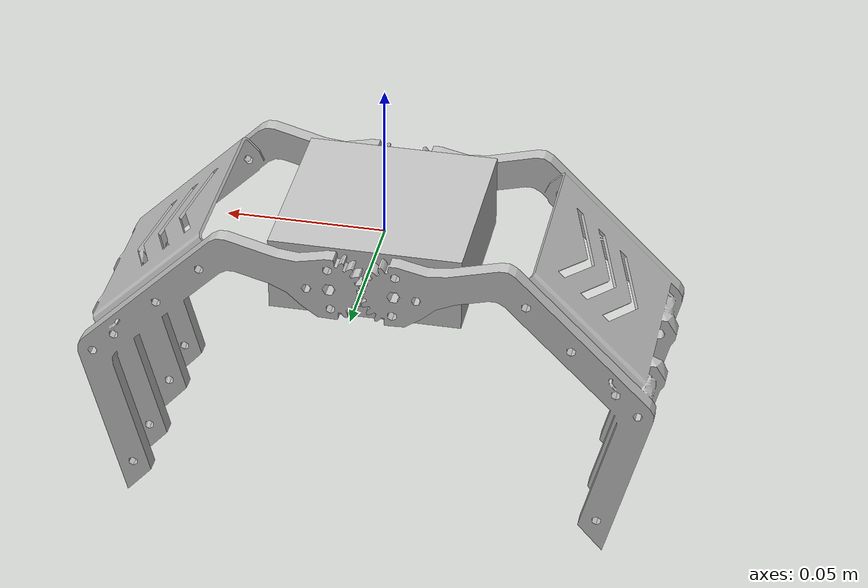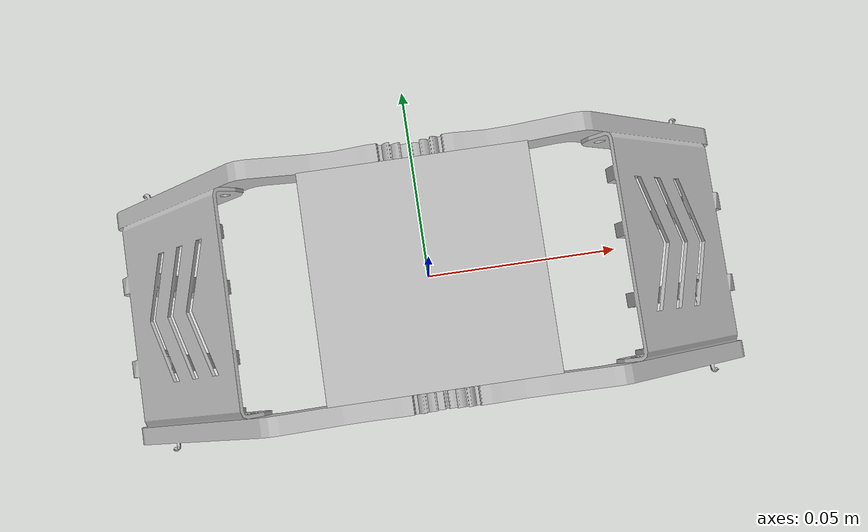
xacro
<?xml version="1.0"?>
<robot name="protobot_gripper" xmlns:xacro="http://ros.org/wiki/xacro">
  <xacro:include filename="$(find protobot_gripper_description)/urdf/protobot_gripper.xacro"/>
  <xacro:create_gripper/>
  <xacro:include filename="$(find protobot_gripper_description)/urdf/protobot_gripper.transmission.xacro"/>
  <xacro:include filename="$(find protobot_gripper_description)/urdf/protobot_gripper.gazebo.xacro"/>
</robot>

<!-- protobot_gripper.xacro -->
<robot xmlns:xacro="http://ros.org/wiki/xacro">
  <xacro:macro name="create_gripper" params="connected_to:='' xyz:='0 0 0' rpy:='0 0 0'">
    <xacro:unless value="${connected_to==''}">
      <joint name="gripper_base_joint" type="fixed">
        <parent link="${connected_to}"/>
        <child link="gripper_base_link"/>
        <origin rpy="${rpy}" xyz="${xyz}"/>
      </joint>
    </xacro:unless>

    <xacro:macro name="inertial_cuboid_with_pose" params="mass x_length y_length z_length *origin">
      <inertial>
        <xacro:insert_block name="origin"/>
        <mass value="${mass}" />
        <inertia ixx="${(1/12) * mass * (y_length*y_length + z_length*z_length)}" ixy="0.0" ixz="0.0"
                 iyy="${(1/12) * mass * (x_length*x_length + z_length*z_length)}" iyz="0.0"
                 izz="${(1/12) * mass * (x_length*x_length + y_length*y_length)}" />
      </inertial>
    </xacro:macro>

    <link
      name="gripper_base_link">
      <inertial_cuboid_with_pose
        mass="0.2"
        x_length="0.06"
        y_length="0.06"
        z_length="0.024">
        <origin xyz="0 0 0"  rpy="0 0 0"/>
      </inertial_cuboid_with_pose>
      <visual>
        <origin
          xyz="0 0 0"
          rpy="0 0 0" />
        <geometry>
          <box size="0.06 0.06 0.024"/>
        </geometry>
        <material
          name="">
          <color
            rgba="0.75294 0.75294 0.75294 1" />
        </material>
      </visual>
      <collision>
        <origin
          xyz="0 0 0"
          rpy="0 0 0" />
        <geometry>
          <box size="0.06 0.06 0.024"/>
        </geometry>
      </collision>
    </link>

    <link
      name="finger1_link">
      <inertial>
        <origin
          xyz="0 0 0"
          rpy="0 0 0" />
        <mass
          value="6.9625730e-02" />
        <inertia
          ixx="1.5879474e-04"
          ixy="1.3763814e-08"
          ixz="-1.2889963e-04"
          iyy="3.3239323e-04"
          iyz="5.8014283e-09"
          izz="2.8244275e-04" />
      </inertial>
      <visual>
        <origin
          xyz="0 0 0"
          rpy="0 0 0" />
        <geometry>
          <mesh
            filename="package://protobot_gripper_description/meshes/finger_link.STL"/>
        </geometry>
        <material
          name="">
          <color
            rgba="0.75294 0.75294 0.75294 1" />
        </material>
      </visual>
      <collision>
        <origin
          xyz="0 0 0"
          rpy="0 0 0" />
        <geometry>
          <mesh
            filename="package://protobot_gripper_description/meshes/finger_link.STL"/>
        </geometry>
      </collision>
    </link>

    <joint
      name="finger1_joint"
      type="revolute">
      <origin
        xyz="0.01 0 0"
        rpy="3.1416 0 0" />
      <parent
        link="gripper_base_link" />
      <child
        link="finger1_link" />
      <axis
        xyz="0 1 0" />
      <limit
        lower="-0.7"
        upper="0.3"
        effort="5"
        velocity="1"/>
      <dynamics damping="1.0e-6" friction="8.0e-1"/>
    </joint>

    <link
      name="finger2_link">
      <inertial>
        <origin
          xyz="0 0 0"
          rpy="0 0 0" />
        <mass
          value="6.9625730e-02" />
        <inertia
          ixx="1.5879474e-04"
          ixy="1.3763814e-08"
          ixz="-1.2889963e-04"
          iyy="3.3239323e-04"
          iyz="5.8014283e-09"
          izz="2.8244275e-04" />
      </inertial>
      <visual>
        <origin
          xyz="0 0 0"
          rpy="0 0 0" />
        <geometry>
          <mesh
            filename="package://protobot_gripper_description/meshes/finger_link.STL"/>
        </geometry>
        <material
          name="">
          <color
            rgba="0.75294 0.75294 0.75294 1" />
        </material>
      </visual>
      <collision>
        <origin
          xyz="0 0 0"
          rpy="0 0 0" />
        <geometry>
          <mesh
            filename="package://protobot_gripper_description/meshes/finger_link.STL"/>
        </geometry>
      </collision>
    </link>

    <joint
      name="finger2_joint"
      type="revolute">
      <origin
        xyz="-0.01 0 0"
        rpy="3.1416 0 3.1416" />
      <parent
        link="gripper_base_link" />
      <child
        link="finger2_link" />
      <axis
        xyz="0 1 0" />
      <limit
        lower="-0.7"
        upper="0.3"
        effort="5"
        velocity="1"/>
      <dynamics damping="1.0e-6" friction="8.0e-1"/>
      <mimic joint="finger1_joint" multiplier="1"/>
    </joint>
  </xacro:macro>
</robot>
